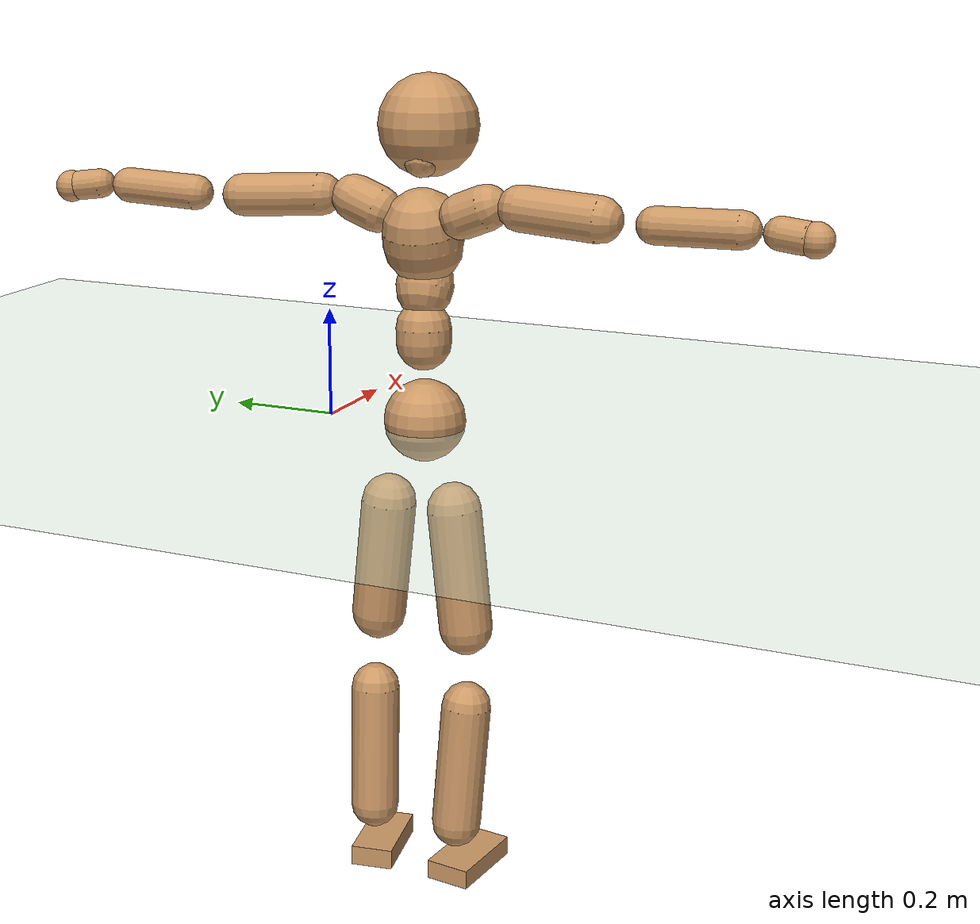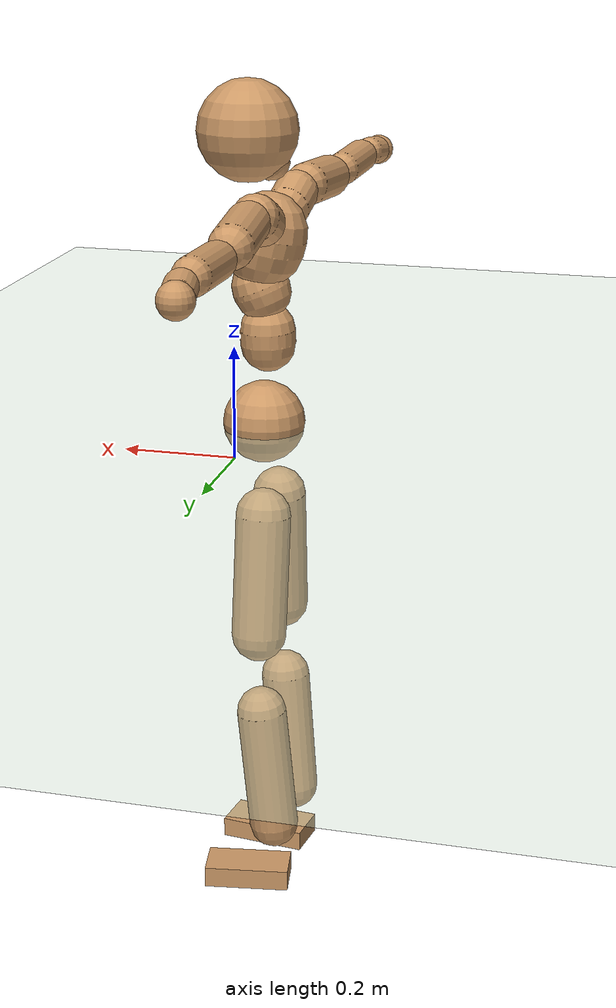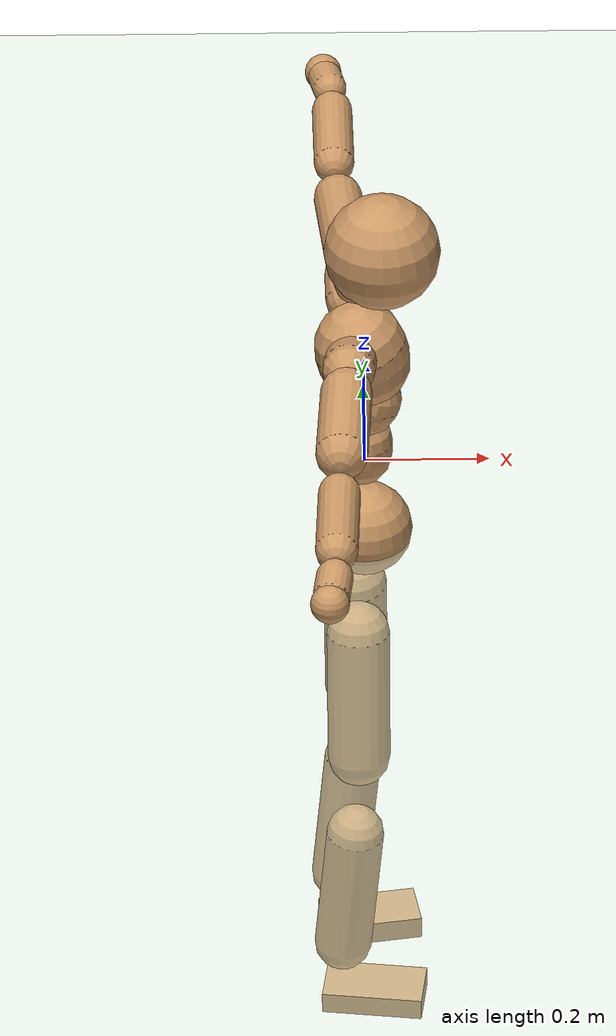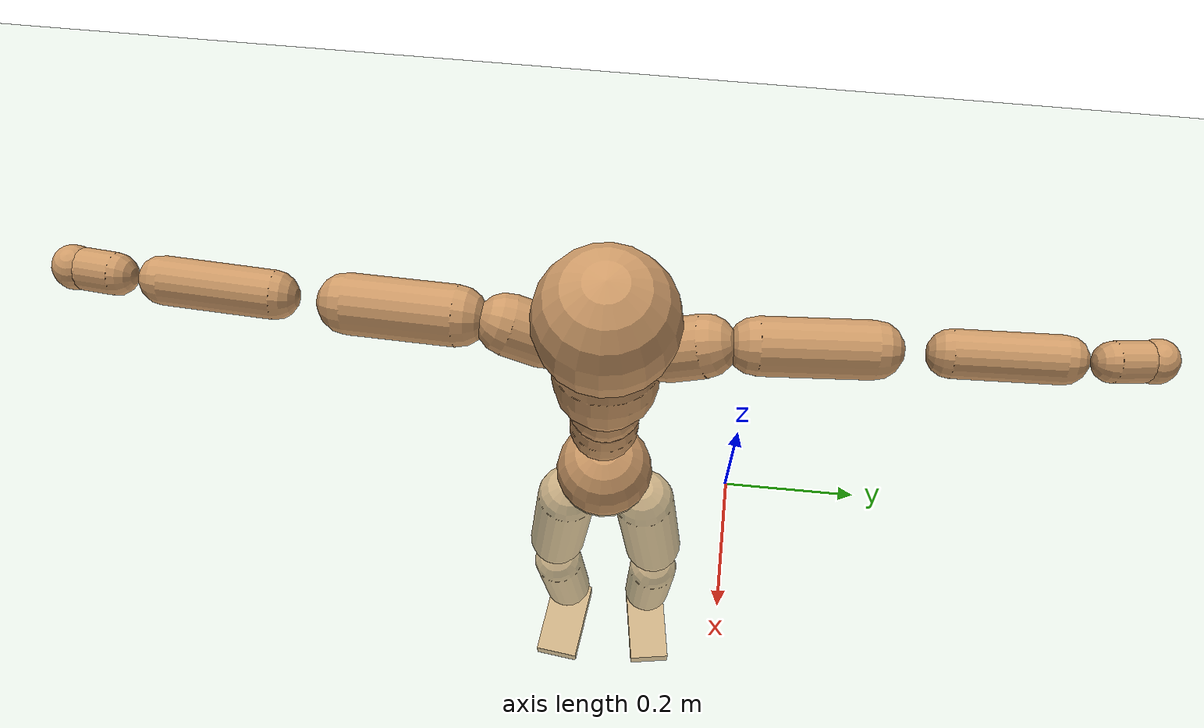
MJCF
<mujoco model="humanoid">
  <compiler coordinate="local"/>
  <default>
    <joint damping="0.0" armature="0.01" stiffness="0.0" limited="true"/>
    <geom conaffinity="1" condim="3" contype="7" margin="0.001" rgba="0.8 0.6 .4 1"/>
  </default>
  <asset>
    <texture type="skybox" builtin="gradient" rgb1=".4 .5 .6" rgb2="0 0 0" width="100" height="100"/>
    <texture builtin="flat" height="1278" mark="cross" markrgb="1 1 1" name="texgeom" random="0.01" rgb1="0.8 0.6 0.4" rgb2="0.8 0.6 0.4" type="cube" width="127"/>
    <texture builtin="checker" height="100" name="texplane" rgb1="0 0 0" rgb2="0.8 0.8 0.8" type="2d" width="100"/>
    <material name="MatPlane" reflectance="0.5" shininess="1" specular="1" texrepeat="60 60" texture="texplane"/>
    <material name="geom" texture="texgeom" texuniform="true"/>
  </asset>
  <worldbody>
    <light cutoff="100" diffuse="1 1 1" dir="-0 0 -1.3" directional="true" exponent="1" pos="0 0 1.3" specular=".1 .1 .1"/>
    <geom conaffinity="1" condim="3" name="floor" pos="0 0 0" rgba="0.8 0.9 0.8 1" size="100 100 .2" type="plane" material="MatPlane"/>
    <body name="Pelvis" pos="-0.0018 -0.1929 0.0114">
      <freejoint name="Pelvis"/>
      <geom type="sphere" contype="1" conaffinity="1" density="500" size="0.0755" pos="0.0000 0.0000 0.0000" name="Pelvis"/>
      <body name="L_Hip" pos="-0.0165 0.0582 -0.0839">
        <joint name="L_Hip_x" type="hinge" pos="0 0 0" axis="1 0 0" stiffness="800" damping="80" armature="0.02" range="-180.0000 180.0000"/>
        <joint name="L_Hip_y" type="hinge" pos="0 0 0" axis="0 1 0" stiffness="800" damping="80" armature="0.02" range="-180.0000 180.0000"/>
        <joint name="L_Hip_z" type="hinge" pos="0 0 0" axis="0 0 1" stiffness="800" damping="80" armature="0.02" range="-180.0000 180.0000"/>
        <geom type="capsule" contype="1" conaffinity="1" density="500" fromto="0.0008 0.0076 -0.0754 0.0031 0.0305 -0.3014" size="0.0508" name="L_Hip"/>
        <body name="L_Knee" pos="0.0039 0.0381 -0.3768">
          <joint name="L_Knee_x" type="hinge" pos="0 0 0" axis="1 0 0" stiffness="800" damping="80" armature="0.02" range="-180.0000 180.0000"/>
          <joint name="L_Knee_y" type="hinge" pos="0 0 0" axis="0 1 0" stiffness="800" damping="80" armature="0.02" range="-180.0000 180.0000"/>
          <joint name="L_Knee_z" type="hinge" pos="0 0 0" axis="0 0 1" stiffness="800" damping="80" armature="0.02" range="-180.0000 180.0000"/>
          <geom type="capsule" contype="1" conaffinity="1" density="500" fromto="-0.0074 -0.0025 -0.0788 -0.0297 -0.0101 -0.3151" size="0.046" name="L_Knee"/>
          <body name="L_Ankle" pos="-0.0371 -0.0126 -0.3939">
            <joint name="L_Ankle_x" type="hinge" pos="0 0 0" axis="1 0 0" stiffness="800" damping="80" armature="0.02" range="-180.0000 180.0000"/>
            <joint name="L_Ankle_y" type="hinge" pos="0 0 0" axis="0 1 0" stiffness="800" damping="80" armature="0.02" range="-180.0000 180.0000"/>
            <joint name="L_Ankle_z" type="hinge" pos="0 0 0" axis="0 0 1" stiffness="800" damping="80" armature="0.02" range="-180.0000 180.0000"/>
            <geom type="box" contype="1" conaffinity="1" density="500" pos="0.0567 0.0091 -0.0272" size="0.0795 0.0401 0.0195" quat="0.9969 0.0000 0.0000 0.0792" name="L_Ankle"/>
            <body name="L_Toe" pos="0.1135 0.0181 -0.0544">
              <joint name="L_Toe_x" type="hinge" pos="0 0 0" axis="1 0 0" stiffness="500" damping="50" armature="0.02" range="-180.0000 180.0000"/>
              <joint name="L_Toe_y" type="hinge" pos="0 0 0" axis="0 1 0" stiffness="500" damping="50" armature="0.02" range="-180.0000 180.0000"/>
              <joint name="L_Toe_z" type="hinge" pos="0 0 0" axis="0 0 1" stiffness="500" damping="50" armature="0.02" range="-180.0000 180.0000"/>
              <geom type="box" contype="1" conaffinity="1" density="500" pos="0.0000 0.0000 0.0274" size="0.0008 0.002 0.001" quat="0.9963 0.0000 0.0000 0.0862" name="L_Toe"/>
            </body>
          </body>
        </body>
      </body>
      <body name="R_Hip" pos="-0.0123 -0.0563 -0.0824">
        <joint name="R_Hip_x" type="hinge" pos="0 0 0" axis="1 0 0" stiffness="800" damping="80" armature="0.02" range="-180.0000 180.0000"/>
        <joint name="R_Hip_y" type="hinge" pos="0 0 0" axis="0 1 0" stiffness="800" damping="80" armature="0.02" range="-180.0000 180.0000"/>
        <joint name="R_Hip_z" type="hinge" pos="0 0 0" axis="0 0 1" stiffness="800" damping="80" armature="0.02" range="-180.0000 180.0000"/>
        <geom type="capsule" contype="1" conaffinity="1" density="500" fromto="0.0002 -0.0084 -0.0770 0.0007 -0.0338 -0.3079" size="0.05" name="R_Hip"/>
        <body name="R_Knee" pos="0.0009 -0.0422 -0.3849">
          <joint name="R_Knee_x" type="hinge" pos="0 0 0" axis="1 0 0" stiffness="800" damping="80" armature="0.02" range="-180.0000 180.0000"/>
          <joint name="R_Knee_y" type="hinge" pos="0 0 0" axis="0 1 0" stiffness="800" damping="80" armature="0.02" range="-180.0000 180.0000"/>
          <joint name="R_Knee_z" type="hinge" pos="0 0 0" axis="0 0 1" stiffness="800" damping="80" armature="0.02" range="-180.0000 180.0000"/>
          <geom type="capsule" contype="1" conaffinity="1" density="500" fromto="-0.0069 0.0032 -0.0786 -0.0275 0.0130 -0.3146" size="0.0465" name="R_Knee"/>
          <body name="R_Ankle" pos="-0.0344 0.0162 -0.3932">
            <joint name="R_Ankle_x" type="hinge" pos="0 0 0" axis="1 0 0" stiffness="800" damping="80" armature="0.02" range="-180.0000 180.0000"/>
            <joint name="R_Ankle_y" type="hinge" pos="0 0 0" axis="0 1 0" stiffness="800" damping="80" armature="0.02" range="-180.0000 180.0000"/>
            <joint name="R_Ankle_z" type="hinge" pos="0 0 0" axis="0 0 1" stiffness="800" damping="80" armature="0.02" range="-180.0000 180.0000"/>
            <geom type="box" contype="1" conaffinity="1" density="500" pos="0.0580 -0.0075 -0.0228" size="0.0815 0.043 0.0185" quat="0.9979 0.0000 0.0000 -0.0640" name="R_Ankle"/>
            <body name="R_Toe" pos="0.1159 -0.0149 -0.0457">
              <joint name="R_Toe_x" type="hinge" pos="0 0 0" axis="1 0 0" stiffness="500" damping="50" armature="0.02" range="-180.0000 180.0000"/>
              <joint name="R_Toe_y" type="hinge" pos="0 0 0" axis="0 1 0" stiffness="500" damping="50" armature="0.02" range="-180.0000 180.0000"/>
              <joint name="R_Toe_z" type="hinge" pos="0 0 0" axis="0 0 1" stiffness="500" damping="50" armature="0.02" range="-180.0000 180.0000"/>
              <geom type="box" contype="1" conaffinity="1" density="500" pos="0.0000 0.0000 0.0248" size="0.0008 0.0021 0.001" quat="0.9985 0.0000 0.0000 -0.0546" name="R_Toe"/>
            </body>
          </body>
        </body>
      </body>
      <body name="Torso" pos="-0.0088 -0.0024 0.0953">
        <joint name="Torso_x" type="hinge" pos="0 0 0" axis="1 0 0" stiffness="1000" damping="100" armature="0.02" range="-180.0000 180.0000"/>
        <joint name="Torso_y" type="hinge" pos="0 0 0" axis="0 1 0" stiffness="1000" damping="100" armature="0.02" range="-180.0000 180.0000"/>
        <joint name="Torso_z" type="hinge" pos="0 0 0" axis="0 0 1" stiffness="1000" damping="100" armature="0.02" range="-180.0000 180.0000"/>
        <geom type="capsule" contype="1" conaffinity="1" density="500" fromto="0.0024 0.0023 0.0774 0.0016 0.0015 0.0516" size="0.050499" name="Torso"/>
        <body name="Spine" pos="0.004 0.0038 0.129">
          <joint name="Spine_x" type="hinge" pos="0 0 0" axis="1 0 0" stiffness="1000" damping="100" armature="0.02" range="-180.0000 180.0000"/>
          <joint name="Spine_y" type="hinge" pos="0 0 0" axis="0 1 0" stiffness="1000" damping="100" armature="0.02" range="-180.0000 180.0000"/>
          <joint name="Spine_z" type="hinge" pos="0 0 0" axis="0 0 1" stiffness="1000" damping="100" armature="0.02" range="-180.0000 180.0000"/>
          <geom type="capsule" contype="1" conaffinity="1" density="500" fromto="0.0114 0.0014 0.0280 0.0076 0.0010 0.0186" size="0.052359" name="Spine"/>
          <body name="Chest" pos="0.019 0.0024 0.0466">
            <joint name="Chest_x" type="hinge" pos="0 0 0" axis="1 0 0" stiffness="1000" damping="100" armature="0.02" range="-180.0000 180.0000"/>
            <joint name="Chest_y" type="hinge" pos="0 0 0" axis="0 1 0" stiffness="1000" damping="100" armature="0.02" range="-180.0000 180.0000"/>
            <joint name="Chest_z" type="hinge" pos="0 0 0" axis="0 0 1" stiffness="1000" damping="100" armature="0.02" range="-180.0000 180.0000"/>
            <geom type="capsule" contype="1" conaffinity="1" density="500" fromto="-0.0207 -0.0014 0.0806 -0.0138 -0.0009 0.0537" size="0.072726" name="Chest"/>
            <body name="Neck" pos="-0.037 -0.0041 0.1924">
              <joint name="Neck_x" type="hinge" pos="0 0 0" axis="1 0 0" stiffness="500" damping="50" armature="0.02" range="-180.0000 180.0000"/>
              <joint name="Neck_y" type="hinge" pos="0 0 0" axis="0 1 0" stiffness="500" damping="50" armature="0.02" range="-180.0000 180.0000"/>
              <joint name="Neck_z" type="hinge" pos="0 0 0" axis="0 0 1" stiffness="500" damping="50" armature="0.02" range="-180.0000 180.0000"/>
              <geom type="capsule" contype="1" conaffinity="1" density="500" fromto="0.0102 0.0014 0.0133 0.0409 0.0056 0.0531" size="0.033945" name="Neck"/>
              <body name="Head" pos="0.0511 0.0071 0.0664">
                <joint name="Head_x" type="hinge" pos="0 0 0" axis="1 0 0" stiffness="500" damping="50" armature="0.02" range="-180.0000 180.0000"/>
                <joint name="Head_y" type="hinge" pos="0 0 0" axis="0 1 0" stiffness="500" damping="50" armature="0.02" range="-180.0000 180.0000"/>
                <joint name="Head_z" type="hinge" pos="0 0 0" axis="0 0 1" stiffness="500" damping="50" armature="0.02" range="-180.0000 180.0000"/>
                <geom type="sphere" contype="1" conaffinity="1" density="500" size="0.0910" pos="0.0000 0.0000 0.0000" name="Head"/>
              </body>
            </body>
            <body name="L_Thorax" pos="-0.0313 0.0646 0.1061">
              <joint name="L_Thorax_x" type="hinge" pos="0 0 0" axis="1 0 0" stiffness="500" damping="50" armature="0.02" range="-180.0000 180.0000"/>
              <joint name="L_Thorax_y" type="hinge" pos="0 0 0" axis="0 1 0" stiffness="500" damping="50" armature="0.02" range="-180.0000 180.0000"/>
              <joint name="L_Thorax_z" type="hinge" pos="0 0 0" axis="0 0 1" stiffness="500" damping="50" armature="0.02" range="-180.0000 180.0000"/>
              <geom type="capsule" contype="1" conaffinity="1" density="500" fromto="-0.0004 0.0151 0.0060 -0.0016 0.0606 0.0240" size="0.0418" name="L_Thorax"/>
              <body name="L_Shoulder" pos="-0.002 0.0757 0.0299">
                <joint name="L_Shoulder_x" type="hinge" pos="0 0 0" axis="1 0 0" stiffness="500" damping="50" armature="0.02" range="-720.0000 720.0000"/>
                <joint name="L_Shoulder_y" type="hinge" pos="0 0 0" axis="0 1 0" stiffness="500" damping="50" armature="0.02" range="-720.0000 720.0000"/>
                <joint name="L_Shoulder_z" type="hinge" pos="0 0 0" axis="0 0 1" stiffness="500" damping="50" armature="0.02" range="-720.0000 720.0000"/>
                <geom type="capsule" contype="1" conaffinity="1" density="500" fromto="-0.0045 0.0503 -0.0029 -0.0179 0.2013 -0.0116" size="0.0385" name="L_Shoulder"/>
                <body name="L_Elbow" pos="-0.0224 0.2517 -0.0145">
                  <joint name="L_Elbow_x" type="hinge" pos="0 0 0" axis="1 0 0" stiffness="500" damping="50" armature="0.02" range="-720.0000 720.0000"/>
                  <joint name="L_Elbow_y" type="hinge" pos="0 0 0" axis="0 1 0" stiffness="500" damping="50" armature="0.02" range="-720.0000 720.0000"/>
                  <joint name="L_Elbow_z" type="hinge" pos="0 0 0" axis="0 0 1" stiffness="500" damping="50" armature="0.02" range="-720.0000 720.0000"/>
                  <geom type="capsule" contype="1" conaffinity="1" density="500" fromto="-0.0007 0.0473 0.0017 -0.0027 0.1891 0.0070" size="0.0321" name="L_Elbow"/>
                  <body name="L_Wrist" pos="-0.0034 0.2364 0.0087">
                    <joint name="L_Wrist_x" type="hinge" pos="0 0 0" axis="1 0 0" stiffness="300" damping="30" armature="0.02" range="-180.0000 180.0000"/>
                    <joint name="L_Wrist_y" type="hinge" pos="0 0 0" axis="0 1 0" stiffness="300" damping="30" armature="0.02" range="-180.0000 180.0000"/>
                    <joint name="L_Wrist_z" type="hinge" pos="0 0 0" axis="0 0 1" stiffness="300" damping="30" armature="0.02" range="-180.0000 180.0000"/>
                    <geom type="capsule" contype="1" conaffinity="1" density="500" fromto="-0.0025 0.0147 -0.0018 -0.0101 0.0587 -0.0073" size="0.0271" name="L_Wrist"/>
                    <body name="L_Hand" pos="-0.0126 0.0734 -0.0092">
                      <joint name="L_Hand_x" type="hinge" pos="0 0 0" axis="1 0 0" stiffness="300" damping="30" armature="0.02" range="-180.0000 180.0000"/>
                      <joint name="L_Hand_y" type="hinge" pos="0 0 0" axis="0 1 0" stiffness="300" damping="30" armature="0.02" range="-180.0000 180.0000"/>
                      <joint name="L_Hand_z" type="hinge" pos="0 0 0" axis="0 0 1" stiffness="300" damping="30" armature="0.02" range="-180.0000 180.0000"/>
                      <geom type="sphere" contype="1" conaffinity="1" density="500" size="0.0295" pos="0.0000 0.0000 0.0000" name="L_Hand"/>
                    </body>
                  </body>
                </body>
              </body>
            </body>
            <body name="R_Thorax" pos="-0.035 -0.0673 0.1042">
              <joint name="R_Thorax_x" type="hinge" pos="0 0 0" axis="1 0 0" stiffness="500" damping="50" armature="0.02" range="-180.0000 180.0000"/>
              <joint name="R_Thorax_y" type="hinge" pos="0 0 0" axis="0 1 0" stiffness="500" damping="50" armature="0.02" range="-180.0000 180.0000"/>
              <joint name="R_Thorax_z" type="hinge" pos="0 0 0" axis="0 0 1" stiffness="500" damping="50" armature="0.02" range="-180.0000 180.0000"/>
              <geom type="capsule" contype="1" conaffinity="1" density="500" fromto="-0.0012 -0.0159 0.0063 -0.0048 -0.0634 0.0253" size="0.0409" name="R_Thorax"/>
              <body name="R_Shoulder" pos="-0.006 -0.0793 0.0317">
                <joint name="R_Shoulder_x" type="hinge" pos="0 0 0" axis="1 0 0" stiffness="500" damping="50" armature="0.02" range="-720.0000 720.0000"/>
                <joint name="R_Shoulder_y" type="hinge" pos="0 0 0" axis="0 1 0" stiffness="500" damping="50" armature="0.02" range="-720.0000 720.0000"/>
                <joint name="R_Shoulder_z" type="hinge" pos="0 0 0" axis="0 0 1" stiffness="500" damping="50" armature="0.02" range="-720.0000 720.0000"/>
                <geom type="capsule" contype="1" conaffinity="1" density="500" fromto="-0.0029 -0.0486 -0.0028 -0.0115 -0.1945 -0.0113" size="0.0404" name="R_Shoulder"/>
                <body name="R_Elbow" pos="-0.0144 -0.2431 -0.0142">
                  <joint name="R_Elbow_x" type="hinge" pos="0 0 0" axis="1 0 0" stiffness="500" damping="50" armature="0.02" range="-720.0000 720.0000"/>
                  <joint name="R_Elbow_y" type="hinge" pos="0 0 0" axis="0 1 0" stiffness="500" damping="50" armature="0.02" range="-720.0000 720.0000"/>
                  <joint name="R_Elbow_z" type="hinge" pos="0 0 0" axis="0 0 1" stiffness="500" damping="50" armature="0.02" range="-720.0000 720.0000"/>
                  <geom type="capsule" contype="1" conaffinity="1" density="500" fromto="-0.0018 -0.0490 0.0011 -0.0073 -0.1962 0.0044" size="0.0324" name="R_Elbow"/>
                  <body name="R_Wrist" pos="-0.0091 -0.2452 0.0055">
                    <joint name="R_Wrist_x" type="hinge" pos="0 0 0" axis="1 0 0" stiffness="300" damping="30" armature="0.02" range="-180.0000 180.0000"/>
                    <joint name="R_Wrist_y" type="hinge" pos="0 0 0" axis="0 1 0" stiffness="300" damping="30" armature="0.02" range="-180.0000 180.0000"/>
                    <joint name="R_Wrist_z" type="hinge" pos="0 0 0" axis="0 0 1" stiffness="300" damping="30" armature="0.02" range="-180.0000 180.0000"/>
                    <geom type="capsule" contype="1" conaffinity="1" density="500" fromto="-0.0019 -0.0149 -0.0014 -0.0076 -0.0597 -0.0054" size="0.028" name="R_Wrist"/>
                    <body name="R_Hand" pos="-0.0095 -0.0746 -0.0068">
                      <joint name="R_Hand_x" type="hinge" pos="0 0 0" axis="1 0 0" stiffness="300" damping="30" armature="0.02" range="-180.0000 180.0000"/>
                      <joint name="R_Hand_y" type="hinge" pos="0 0 0" axis="0 1 0" stiffness="300" damping="30" armature="0.02" range="-180.0000 180.0000"/>
                      <joint name="R_Hand_z" type="hinge" pos="0 0 0" axis="0 0 1" stiffness="300" damping="30" armature="0.02" range="-180.0000 180.0000"/>
                      <geom type="sphere" contype="1" conaffinity="1" density="500" size="0.0298" pos="0.0000 0.0000 0.0000" name="R_Hand"/>
                    </body>
                  </body>
                </body>
              </body>
            </body>
          </body>
        </body>
      </body>
    </body>
  </worldbody>
  <actuator>
    <motor name="L_Hip_x" joint="L_Hip_x" gear="500"/>
    <motor name="L_Hip_y" joint="L_Hip_y" gear="500"/>
    <motor name="L_Hip_z" joint="L_Hip_z" gear="500"/>
    <motor name="L_Knee_x" joint="L_Knee_x" gear="500"/>
    <motor name="L_Knee_y" joint="L_Knee_y" gear="500"/>
    <motor name="L_Knee_z" joint="L_Knee_z" gear="500"/>
    <motor name="L_Ankle_x" joint="L_Ankle_x" gear="500"/>
    <motor name="L_Ankle_y" joint="L_Ankle_y" gear="500"/>
    <motor name="L_Ankle_z" joint="L_Ankle_z" gear="500"/>
    <motor name="L_Toe_x" joint="L_Toe_x" gear="500"/>
    <motor name="L_Toe_y" joint="L_Toe_y" gear="500"/>
    <motor name="L_Toe_z" joint="L_Toe_z" gear="500"/>
    <motor name="R_Hip_x" joint="R_Hip_x" gear="500"/>
    <motor name="R_Hip_y" joint="R_Hip_y" gear="500"/>
    <motor name="R_Hip_z" joint="R_Hip_z" gear="500"/>
    <motor name="R_Knee_x" joint="R_Knee_x" gear="500"/>
    <motor name="R_Knee_y" joint="R_Knee_y" gear="500"/>
    <motor name="R_Knee_z" joint="R_Knee_z" gear="500"/>
    <motor name="R_Ankle_x" joint="R_Ankle_x" gear="500"/>
    <motor name="R_Ankle_y" joint="R_Ankle_y" gear="500"/>
    <motor name="R_Ankle_z" joint="R_Ankle_z" gear="500"/>
    <motor name="R_Toe_x" joint="R_Toe_x" gear="500"/>
    <motor name="R_Toe_y" joint="R_Toe_y" gear="500"/>
    <motor name="R_Toe_z" joint="R_Toe_z" gear="500"/>
    <motor name="Torso_x" joint="Torso_x" gear="500"/>
    <motor name="Torso_y" joint="Torso_y" gear="500"/>
    <motor name="Torso_z" joint="Torso_z" gear="500"/>
    <motor name="Spine_x" joint="Spine_x" gear="500"/>
    <motor name="Spine_y" joint="Spine_y" gear="500"/>
    <motor name="Spine_z" joint="Spine_z" gear="500"/>
    <motor name="Chest_x" joint="Chest_x" gear="500"/>
    <motor name="Chest_y" joint="Chest_y" gear="500"/>
    <motor name="Chest_z" joint="Chest_z" gear="500"/>
    <motor name="Neck_x" joint="Neck_x" gear="500"/>
    <motor name="Neck_y" joint="Neck_y" gear="500"/>
    <motor name="Neck_z" joint="Neck_z" gear="500"/>
    <motor name="Head_x" joint="Head_x" gear="500"/>
    <motor name="Head_y" joint="Head_y" gear="500"/>
    <motor name="Head_z" joint="Head_z" gear="500"/>
    <motor name="L_Thorax_x" joint="L_Thorax_x" gear="500"/>
    <motor name="L_Thorax_y" joint="L_Thorax_y" gear="500"/>
    <motor name="L_Thorax_z" joint="L_Thorax_z" gear="500"/>
    <motor name="L_Shoulder_x" joint="L_Shoulder_x" gear="500"/>
    <motor name="L_Shoulder_y" joint="L_Shoulder_y" gear="500"/>
    <motor name="L_Shoulder_z" joint="L_Shoulder_z" gear="500"/>
    <motor name="L_Elbow_x" joint="L_Elbow_x" gear="500"/>
    <motor name="L_Elbow_y" joint="L_Elbow_y" gear="500"/>
    <motor name="L_Elbow_z" joint="L_Elbow_z" gear="500"/>
    <motor name="L_Wrist_x" joint="L_Wrist_x" gear="500"/>
    <motor name="L_Wrist_y" joint="L_Wrist_y" gear="500"/>
    <motor name="L_Wrist_z" joint="L_Wrist_z" gear="500"/>
    <motor name="L_Hand_x" joint="L_Hand_x" gear="500"/>
    <motor name="L_Hand_y" joint="L_Hand_y" gear="500"/>
    <motor name="L_Hand_z" joint="L_Hand_z" gear="500"/>
    <motor name="R_Thorax_x" joint="R_Thorax_x" gear="500"/>
    <motor name="R_Thorax_y" joint="R_Thorax_y" gear="500"/>
    <motor name="R_Thorax_z" joint="R_Thorax_z" gear="500"/>
    <motor name="R_Shoulder_x" joint="R_Shoulder_x" gear="500"/>
    <motor name="R_Shoulder_y" joint="R_Shoulder_y" gear="500"/>
    <motor name="R_Shoulder_z" joint="R_Shoulder_z" gear="500"/>
    <motor name="R_Elbow_x" joint="R_Elbow_x" gear="500"/>
    <motor name="R_Elbow_y" joint="R_Elbow_y" gear="500"/>
    <motor name="R_Elbow_z" joint="R_Elbow_z" gear="500"/>
    <motor name="R_Wrist_x" joint="R_Wrist_x" gear="500"/>
    <motor name="R_Wrist_y" joint="R_Wrist_y" gear="500"/>
    <motor name="R_Wrist_z" joint="R_Wrist_z" gear="500"/>
    <motor name="R_Hand_x" joint="R_Hand_x" gear="500"/>
    <motor name="R_Hand_y" joint="R_Hand_y" gear="500"/>
    <motor name="R_Hand_z" joint="R_Hand_z" gear="500"/>
  </actuator>
  <contact>
    <exclude body1="Torso" body2="Chest"/>
    <exclude body1="Head" body2="Chest"/>
    <exclude body1="R_Knee" body2="R_Toe"/>
    <exclude body1="R_Knee" body2="L_Ankle"/>
    <exclude body1="R_Knee" body2="L_Toe"/>
    <exclude body1="L_Knee" body2="L_Toe"/>
    <exclude body1="L_Knee" body2="R_Ankle"/>
    <exclude body1="L_Knee" body2="R_Toe"/>
    <exclude body1="L_Shoulder" body2="Chest"/>
    <exclude body1="R_Shoulder" body2="Chest"/>
  </contact>
  <sensor/>
  <size njmax="700" nconmax="700"/>
</mujoco>
